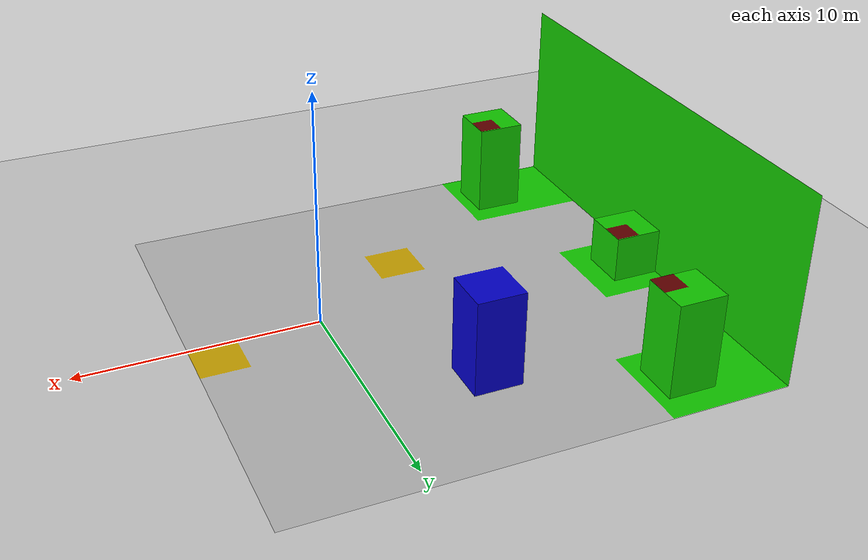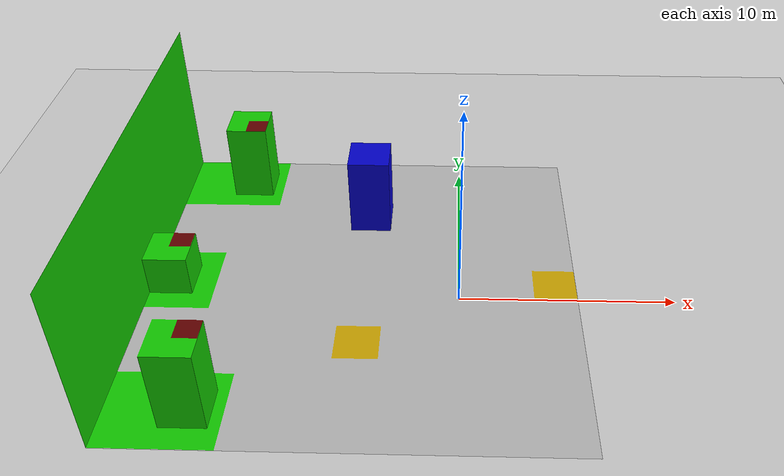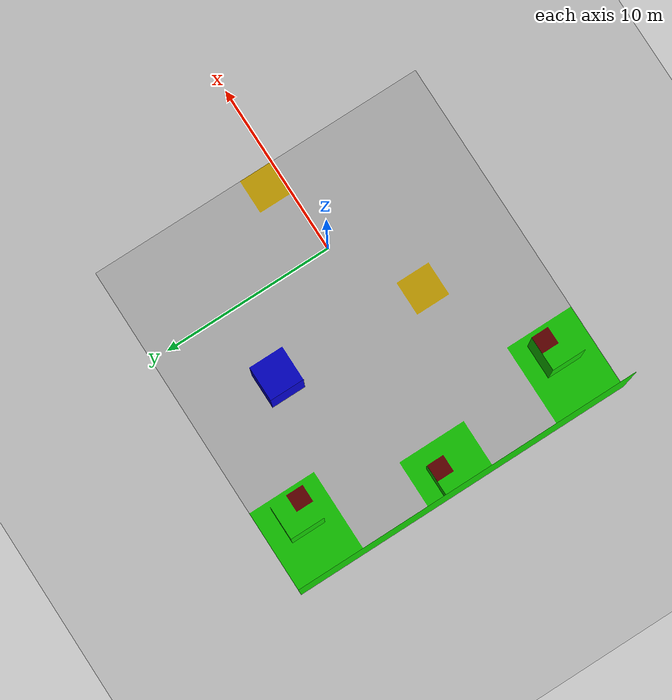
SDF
<?xml version="1.0" ?>
<sdf version="1.5">
  <world name="default">
    <!-- A global light source -->
    <include>
      <uri>model://sun</uri>
    </include>
    <!-- A ground plane -->
    <include>
      <uri>model://ground_plane</uri>
    </include>
    <include>
      <uri>model://asphalt_plane</uri>
    </include>
    <include>
      <name>Arena_KRTI_2021</name>
      <uri>model://ArenaKRTI</uri>
      <pose>5.50983 0.979914 0.06   0 0 3.14159</pose>
    </include>
    <physics name='default_physics' default='0' type='ode'>
      <gravity>0 0 -9.8066</gravity>
      <ode>
        <solver>
          <type>quick</type>
          <iters>10</iters>
          <sor>1.3</sor>
          <use_dynamic_moi_rescaling>0</use_dynamic_moi_rescaling>
        </solver>
        <constraints>
          <cfm>0</cfm>
          <erp>0.2</erp>
          <contact_max_correcting_vel>100</contact_max_correcting_vel>
          <contact_surface_layer>0.001</contact_surface_layer>
        </constraints>
      </ode>
      <max_step_size>0.004</max_step_size>
      <real_time_factor>1</real_time_factor>
      <real_time_update_rate>250</real_time_update_rate>
      <magnetic_field>6.0e-6 2.3e-5 -4.2e-5</magnetic_field>
    </physics>
  </world>
</sdf>

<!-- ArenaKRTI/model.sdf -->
<sdf version="1.6">
  <model name="Arena_KRTI_2021">
    <pose>0 0 1 0 0 0</pose>
    <static>true</static>
    <link name="link">
      <collision name="collision">
        <geometry>
          <mesh>
            <uri>model://ArenaKRTI/meshes/Arena_KRTI_2021.dae</uri>
          </mesh>
        </geometry>
      </collision>

      <visual name="visual">
        <geometry>
          <mesh>
            <uri>model://ArenaKRTI/meshes/Arena_KRTI_2021.dae</uri>
          </mesh>
        </geometry>
      </visual>
    </link>
  </model>
</sdf>
